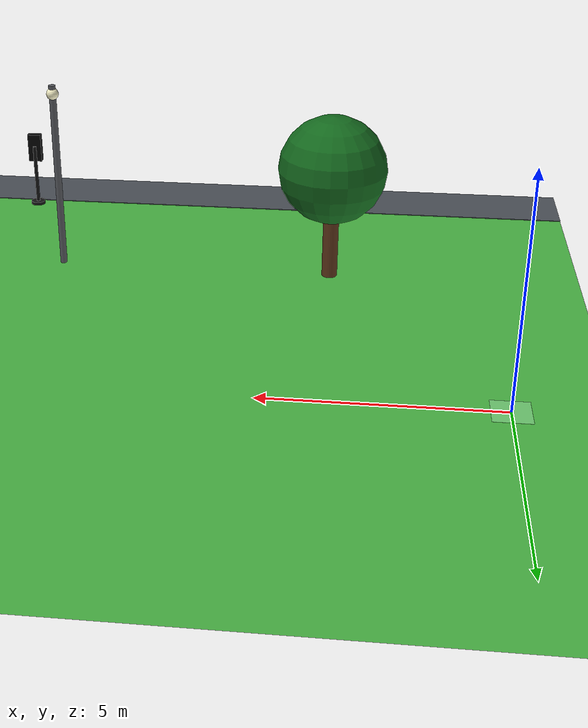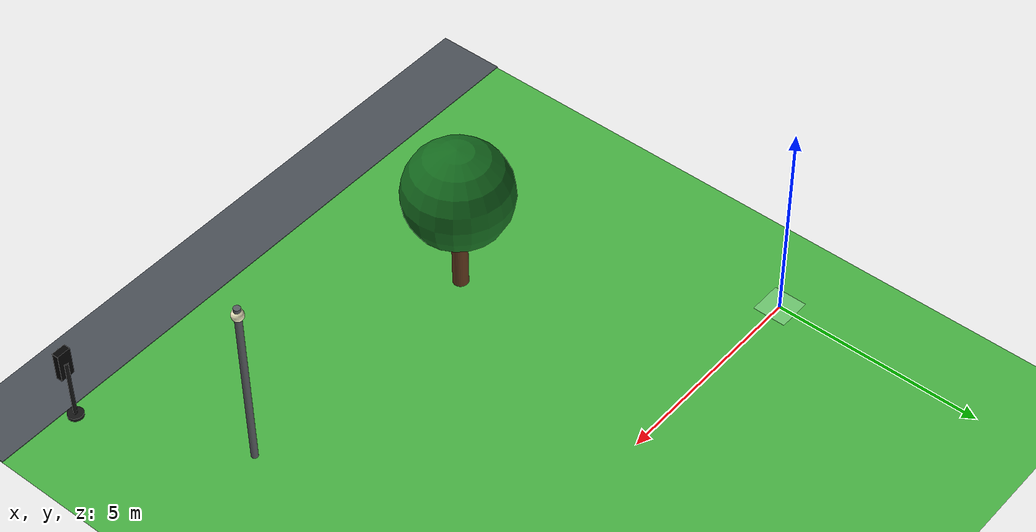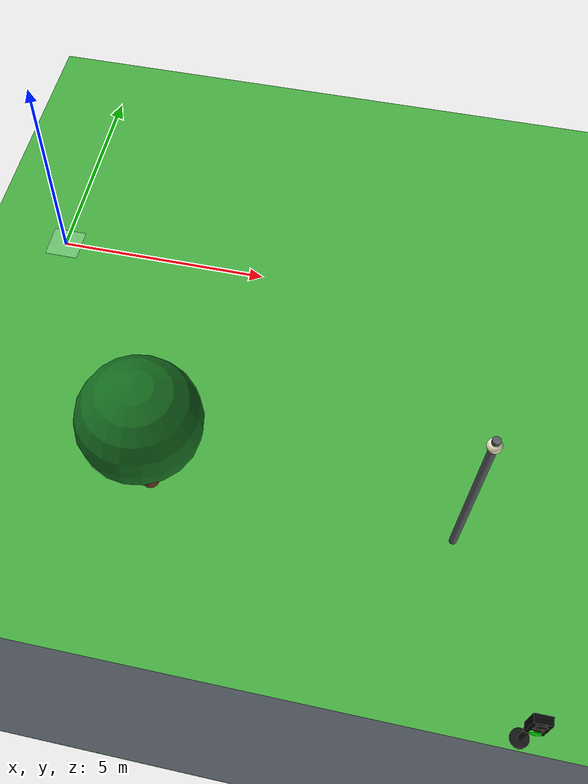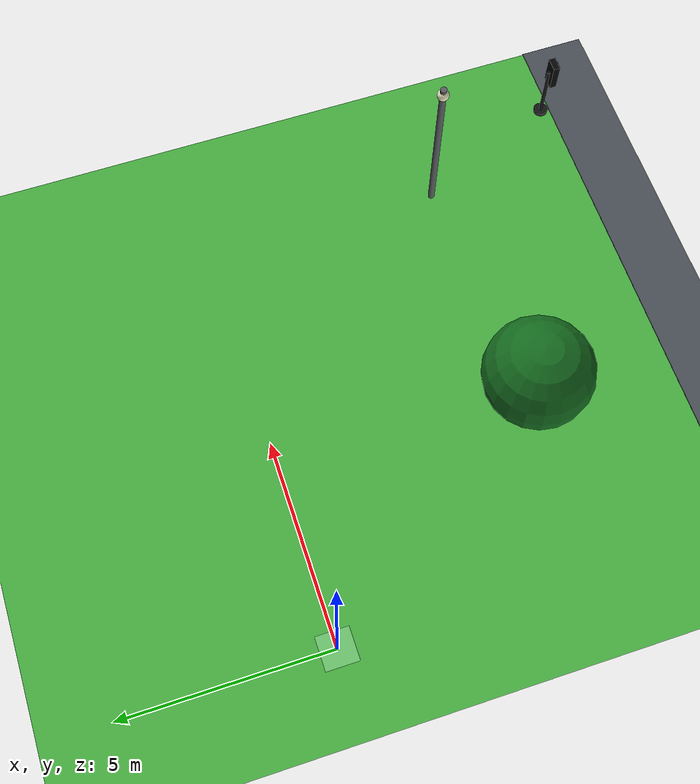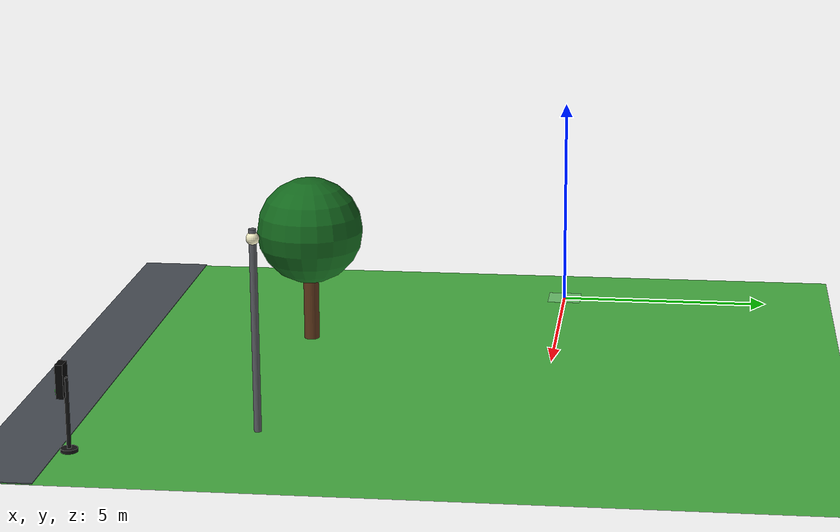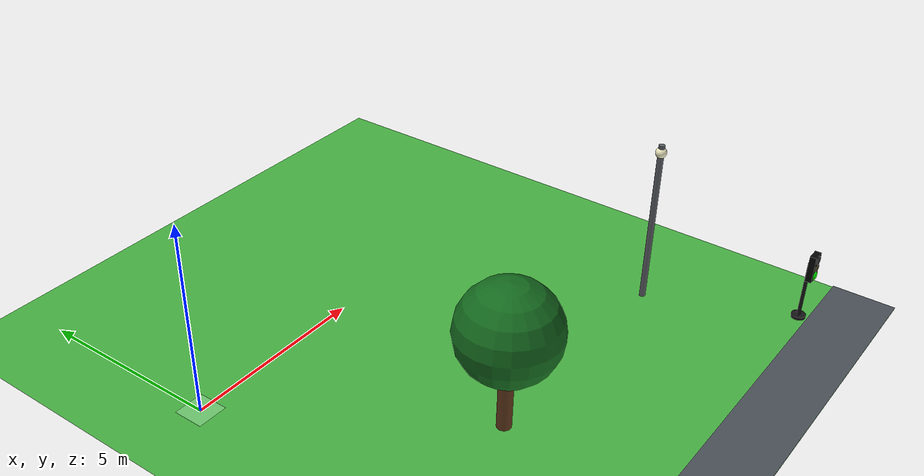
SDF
<sdf version="1.10">
 <world name="city_second">
  <model name="ground_plane">
   <static>true</static>
   <link name="link">
    <collision name="collision">
     <geometry><plane><normal>0 0 1</normal><size>300 300</size></plane></geometry>
    </collision>
    <visual name="visual">
     <geometry><plane><normal>0 0 1</normal><size>300 300</size></plane></geometry>
     <material>
      <ambient>0.280000001 0.689999998 0.25999999 1</ambient>
      <diffuse>0.280000001 0.689999998 0.25999999 1</diffuse>
      <specular>0.0299999993 0.0299999993 0.0299999993 1</specular>
     </material>
    </visual>
    <inertial>
     <mass>1</mass>
     <inertia><ixx>1</ixx><ixy>0</ixy><ixz>0</ixz><iyy>1</iyy><iyz>0</iyz><izz>1</izz></inertia>
    </inertial>
   </link>
  </model>
  <model name="robot_spawn_sidewalk_hint">
   <static>true</static>
   <pose>0 0 0.021000000000000001 0 0 0</pose>
   <link name="link">
    <visual name="visual">
     <geometry><box><size>0.80000000000000004 0.80000000000000004 0.0050000000000000001</size></box></geometry>
     <material>
      <ambient>0.550000012 0.860000014 0.569999993 0.649999976</ambient>
      <diffuse>0.550000012 0.860000014 0.569999993 0.649999976</diffuse>
      <specular>0 0 0 1</specular>
     </material>
     <transparency>0.34999999999999998</transparency>
    </visual>
    <inertial>
     <mass>1</mass>
     <inertia><ixx>1</ixx><ixy>0</ixy><ixz>0</ixz><iyy>1</iyy><iyz>0</iyz><izz>1</izz></inertia>
    </inertial>
   </link>
  </model>
  <model name="road_h_2_1">
   <static>true</static>
   <pose>0.20479900000000001 -13.667999999999999 0.01 0 0 0</pose>
   <link name="link">
    <collision name="collision"><geometry><box><size>84 8 0.02</size></box></geometry></collision>
    <visual name="visual">
     <geometry><box><size>84 8 0.02</size></box></geometry>
     <material>
      <ambient>0.289999992 0.310000002 0.340000004 1</ambient>
      <diffuse>0.289999992 0.310000002 0.340000004 1</diffuse>
      <specular>0.0299999993 0.0299999993 0.0299999993 1</specular>
     </material>
    </visual>
    <inertial>
     <mass>1</mass>
     <inertia><ixx>1</ixx><ixy>0</ixy><ixz>0</ixz><iyy>1</iyy><iyz>0</iyz><izz>1</izz></inertia>
    </inertial>
   </link>
  </model>
  <model name="lamp_1_2_9">
   <static>true</static>
   <pose>10.194599999999999 -5.8334599999999996 2.2000000000000002 0 0 0</pose>
   <link name="link">
    <collision name="collision">
     <geometry>
      <cylinder><radius>0.080000000000000002</radius><length>4.4000000000000004</length></cylinder>
     </geometry>
    </collision>
    <visual name="pole">
     <geometry>
      <cylinder><radius>0.080000000000000002</radius><length>4.4000000000000004</length></cylinder>
     </geometry>
     <material>
      <ambient>0.349999994 0.360000014 0.379999995 1</ambient>
      <diffuse>0.349999994 0.360000014 0.379999995 1</diffuse>
      <specular>0.0299999993 0.0299999993 0.0299999993 1</specular>
     </material>
    </visual>
    <visual name="lamp_head">
     <pose>0 0 2 0 0 0</pose>
     <geometry><sphere><radius>0.14000000000000001</radius></sphere></geometry>
     <material>
      <ambient>0.959999979 0.939999998 0.779999971 1</ambient>
      <diffuse>0.959999979 0.939999998 0.779999971 1</diffuse>
      <specular>0.0299999993 0.0299999993 0.0299999993 1</specular>
     </material>
    </visual>
    <inertial>
     <mass>1</mass>
     <inertia><ixx>1</ixx><ixy>0</ixy><ixz>0</ixz><iyy>1</iyy><iyz>0</iyz><izz>1</izz></inertia>
    </inertial>
   </link>
  </model>
  <model name="Oak tree_3">
   <static>true</static>
   <pose>3.7745000000000002 -5.8038400000000001 0 0 0 0</pose>
   <link name="link">
    <collision name="footprint">
     <pose>0 0 0.050000000000000003 0 0 0</pose>
     <geometry>
      <cylinder><radius>0.90000000000000002</radius><length>0.10000000000000001</length></cylinder>
     </geometry>
    </collision>
    <visual name="trunk">
     <pose>0 0 1.1000000000000001 0 0 0</pose>
     <geometry>
      <cylinder><radius>0.17999999999999999</radius><length>2.2000000000000002</length></cylinder>
     </geometry>
     <material>
      <ambient>0.379999995 0.219999999 0.109999999 1</ambient>
      <diffuse>0.379999995 0.219999999 0.109999999 1</diffuse>
      <specular>0.119999997 0.119999997 0.119999997 1</specular>
      <emissive>0 0 0 1</emissive>
     </material>
    </visual>
    <visual name="crown">
     <pose>0 0 2.6499999999999999 0 0 0</pose>
     <geometry><sphere><radius>1.25</radius></sphere></geometry>
     <material>
      <ambient>0.0799999982 0.419999987 0.119999997 1</ambient>
      <diffuse>0.0799999982 0.419999987 0.119999997 1</diffuse>
      <specular>0.119999997 0.119999997 0.119999997 1</specular>
      <emissive>0 0 0 1</emissive>
     </material>
    </visual>
    <inertial>
     <mass>1</mass>
     <inertia><ixx>1</ixx><ixy>0</ixy><ixz>0</ixz><iyy>1</iyy><iyz>0</iyz><izz>1</izz></inertia>
    </inertial>
   </link>
  </model>
  <model name="simple_traffic_light_green_south_1_3">
   <static>true</static>
   <pose>11.765058665459204 -9.44188907987707 0 0 0 -3.1415900000000754</pose>
   <link name="base">
    <pose>0 0 0.040000000000000001 0 0 0</pose>
    <collision name="collision">
     <geometry>
      <cylinder><radius>0.17999999999999999</radius><length>0.080000000000000002</length></cylinder>
     </geometry>
    </collision>
    <visual name="visual">
     <geometry>
      <cylinder><radius>0.17999999999999999</radius><length>0.080000000000000002</length></cylinder>
     </geometry>
     <material>
      <ambient>0.0799999982 0.0799999982 0.0799999982 1</ambient>
      <diffuse>0.0799999982 0.0799999982 0.0799999982 1</diffuse>
      <specular>0.150000006 0.150000006 0.150000006 1</specular>
      <emissive>0 0 0 1</emissive>
     </material>
    </visual>
    <inertial>
     <mass>1</mass>
     <inertia><ixx>1</ixx><ixy>0</ixy><ixz>0</ixz><iyy>1</iyy><iyz>0</iyz><izz>1</izz></inertia>
    </inertial>
   </link>
   <link name="pole">
    <pose>-1.7763568394002505e-15 -3.5527136788005009e-15 0.80000000000000016 0 0 0</pose>
    <collision name="collision">
     <geometry>
      <cylinder><radius>0.044999999999999998</radius><length>1.6000000000000001</length></cylinder>
     </geometry>
    </collision>
    <visual name="visual">
     <geometry>
      <cylinder><radius>0.044999999999999998</radius><length>1.6000000000000001</length></cylinder>
     </geometry>
     <material>
      <ambient>0.0799999982 0.0799999982 0.0799999982 1</ambient>
      <diffuse>0.0799999982 0.0799999982 0.0799999982 1</diffuse>
      <specular>0.150000006 0.150000006 0.150000006 1</specular>
      <emissive>0 0 0 1</emissive>
     </material>
    </visual>
    <inertial>
     <mass>1</mass>
     <inertia><ixx>1</ixx><ixy>0</ixy><ixz>0</ixz><iyy>1</iyy><iyz>0</iyz><izz>1</izz></inertia>
    </inertial>
   </link>
   <link name="signal_box">
    <pose>-1.7763568394002505e-15 0.089999999999998082 1.5500000000000003 0 0 0</pose>
    <collision name="collision">
     <geometry><box><size>0.34000000000000002 0.16 0.71999999999999997</size></box></geometry>
    </collision>
    <visual name="visual">
     <geometry><box><size>0.34000000000000002 0.16 0.71999999999999997</size></box></geometry>
     <material>
      <ambient>0.0199999996 0.0199999996 0.0199999996 1</ambient>
      <diffuse>0.0199999996 0.0199999996 0.0199999996 1</diffuse>
      <specular>0.150000006 0.150000006 0.150000006 1</specular>
      <emissive>0 0 0 1</emissive>
     </material>
    </visual>
    <inertial>
     <mass>1</mass>
     <inertia><ixx>1</ixx><ixy>0</ixy><ixz>0</ixz><iyy>1</iyy><iyz>0</iyz><izz>1</izz></inertia>
    </inertial>
   </link>
   <link name="red_lens">
    <pose>-1.7763568394002505e-15 0.18099999999999739 1.78 1.5707963267999998 1.2475048931562623e-16 -1.2475078878636004e-16</pose>
    <collision name="collision">
     <geometry><cylinder><radius>0.105</radius><length>0.035000000000000003</length></cylinder></geometry>
    </collision>
    <visual name="visual">
     <geometry><cylinder><radius>0.105</radius><length>0.035000000000000003</length></cylinder></geometry>
     <material>
      <ambient>0.0799999982 0.0799999982 0.0799999982 1</ambient>
      <diffuse>0.0799999982 0.0799999982 0.0799999982 1</diffuse>
      <specular>0.150000006 0.150000006 0.150000006 1</specular>
      <emissive>0 0 0 1</emissive>
     </material>
    </visual>
    <inertial>
     <mass>1</mass>
     <inertia><ixx>1</ixx><ixy>0</ixy><ixz>0</ixz><iyy>1</iyy><iyz>0</iyz><izz>1</izz></inertia>
    </inertial>
   </link>
   <link name="yellow_lens">
    <pose>-1.7763568394002505e-15 0.18199999999999505 1.5500000000000003 1.5707963267999998 1.2475048931562623e-16 -1.2475078878636004e-16</pose>
    <collision name="collision">
     <geometry>
      <cylinder><radius>0.095000000000000001</radius><length>0.035000000000000003</length></cylinder>
     </geometry>
    </collision>
    <visual name="visual">
     <geometry>
      <cylinder><radius>0.095000000000000001</radius><length>0.035000000000000003</length></cylinder>
     </geometry>
     <material>
      <ambient>0.119999997 0.100000001 0.0199999996 1</ambient>
      <diffuse>0.119999997 0.100000001 0.0199999996 1</diffuse>
      <specular>0.150000006 0.150000006 0.150000006 1</specular>
      <emissive>0 0 0 1</emissive>
     </material>
    </visual>
    <inertial>
     <mass>1</mass>
     <inertia><ixx>1</ixx><ixy>0</ixy><ixz>0</ixz><iyy>1</iyy><iyz>0</iyz><izz>1</izz></inertia>
    </inertial>
   </link>
   <link name="green_lens">
    <pose>-1.7763568394002505e-15 0.18299999999999628 1.3200000000000003 1.5707963267999998 1.2475048931562623e-16 -1.2475078878636004e-16</pose>
    <collision name="collision">
     <geometry><cylinder><radius>0.105</radius><length>0.035000000000000003</length></cylinder></geometry>
    </collision>
    <visual name="visual">
     <geometry><cylinder><radius>0.105</radius><length>0.035000000000000003</length></cylinder></geometry>
     <material>
      <ambient>0.0199999996 1 0.0199999996 1</ambient>
      <diffuse>0.0199999996 1 0.0199999996 1</diffuse>
      <specular>0.150000006 0.150000006 0.150000006 1</specular>
      <emissive>0.0199999996 1 0.0199999996 1</emissive>
     </material>
    </visual>
    <inertial>
     <mass>1</mass>
     <inertia><ixx>1</ixx><ixy>0</ixy><ixz>0</ixz><iyy>1</iyy><iyz>0</iyz><izz>1</izz></inertia>
    </inertial>
   </link>
  </model>
 </world>
</sdf>
